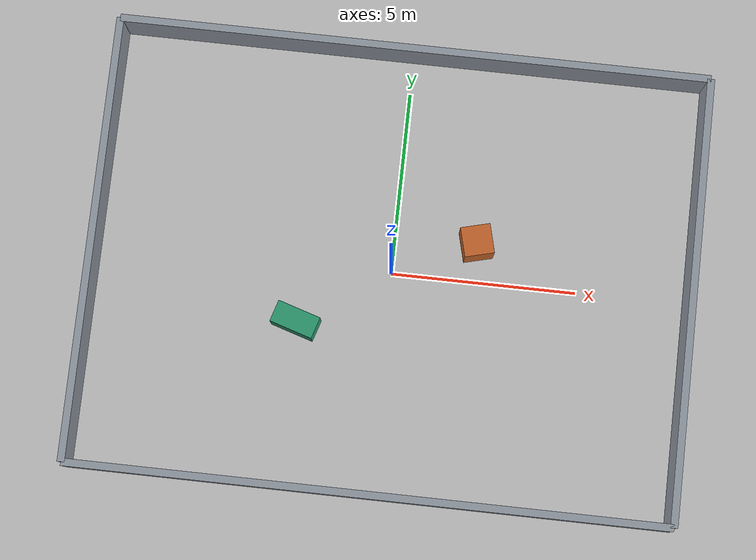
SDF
<?xml version="1.0"?>
<sdf version="1.9">
  <world name="default">
    <physics name="physics" type="ignored">
      <max_step_size>0.001</max_step_size>
      <real_time_factor>1.0</real_time_factor>
    </physics>

    <plugin filename="gz-sim-physics-system" name="gz::sim::systems::Physics"/>
    <plugin filename="gz-sim-user-commands-system" name="gz::sim::systems::UserCommands"/>
    <plugin filename="gz-sim-scene-broadcaster-system" name="gz::sim::systems::SceneBroadcaster"/>
    <plugin filename="gz-sim-imu-system" name="gz::sim::systems::Imu"/>
    <plugin filename="gz-sim-sensors-system" name="gz::sim::systems::Sensors">
      <render_engine>ogre2</render_engine>
    </plugin>

    <light name="sun" type="directional">
      <pose>0 0 8 0 0 0</pose>
      <cast_shadows>true</cast_shadows>
      <diffuse>0.8 0.8 0.8 1</diffuse>
      <specular>0.2 0.2 0.2 1</specular>
      <direction>-0.5 0.1 -0.9</direction>
    </light>

    <model name="ground">
      <static>true</static>
      <link name="ground_link">
        <collision name="ground_collision">
          <geometry>
            <plane>
              <normal>0 0 1</normal>
              <size>40 40</size>
            </plane>
          </geometry>
        </collision>
        <visual name="ground_visual">
          <geometry>
            <plane>
              <normal>0 0 1</normal>
              <size>40 40</size>
            </plane>
          </geometry>
          <material>
            <ambient>0.72 0.72 0.72 1</ambient>
            <diffuse>0.72 0.72 0.72 1</diffuse>
          </material>
        </visual>
      </link>
    </model>

    <model name="north_wall">
      <static>true</static>
      <pose>0 6 0.6 0 0 0</pose>
      <link name="wall_link">
        <collision name="wall_collision">
          <geometry><box><size>16 0.2 1.2</size></box></geometry>
        </collision>
        <visual name="wall_visual">
          <geometry><box><size>16 0.2 1.2</size></box></geometry>
          <material><ambient>0.55 0.58 0.62 1</ambient><diffuse>0.55 0.58 0.62 1</diffuse></material>
        </visual>
      </link>
    </model>
    <model name="south_wall">
      <static>true</static>
      <pose>0 -6 0.6 0 0 0</pose>
      <link name="wall_link">
        <collision name="wall_collision">
          <geometry><box><size>16 0.2 1.2</size></box></geometry>
        </collision>
        <visual name="wall_visual">
          <geometry><box><size>16 0.2 1.2</size></box></geometry>
          <material><ambient>0.55 0.58 0.62 1</ambient><diffuse>0.55 0.58 0.62 1</diffuse></material>
        </visual>
      </link>
    </model>
    <model name="east_wall">
      <static>true</static>
      <pose>8 0 0.6 0 0 0</pose>
      <link name="wall_link">
        <collision name="wall_collision">
          <geometry><box><size>0.2 12 1.2</size></box></geometry>
        </collision>
        <visual name="wall_visual">
          <geometry><box><size>0.2 12 1.2</size></box></geometry>
          <material><ambient>0.55 0.58 0.62 1</ambient><diffuse>0.55 0.58 0.62 1</diffuse></material>
        </visual>
      </link>
    </model>
    <model name="west_wall">
      <static>true</static>
      <pose>-8 0 0.6 0 0 0</pose>
      <link name="wall_link">
        <collision name="wall_collision">
          <geometry><box><size>0.2 12 1.2</size></box></geometry>
        </collision>
        <visual name="wall_visual">
          <geometry><box><size>0.2 12 1.2</size></box></geometry>
          <material><ambient>0.55 0.58 0.62 1</ambient><diffuse>0.55 0.58 0.62 1</diffuse></material>
        </visual>
      </link>
    </model>

    <model name="obstacle_1">
      <static>true</static>
      <pose>2.2 1.0 0.5 0 0 0.25</pose>
      <link name="obstacle_link">
        <collision name="obstacle_collision"><geometry><box><size>0.8 0.8 1.0</size></box></geometry></collision>
        <visual name="obstacle_visual">
          <geometry><box><size>0.8 0.8 1.0</size></box></geometry>
          <material><ambient>0.75 0.38 0.16 1</ambient><diffuse>0.75 0.38 0.16 1</diffuse></material>
        </visual>
      </link>
    </model>
    <model name="obstacle_2">
      <static>true</static>
      <pose>-2.4 -1.6 0.4 0 0 -0.3</pose>
      <link name="obstacle_link">
        <collision name="obstacle_collision"><geometry><box><size>1.2 0.6 0.8</size></box></geometry></collision>
        <visual name="obstacle_visual">
          <geometry><box><size>1.2 0.6 0.8</size></box></geometry>
          <material><ambient>0.16 0.58 0.42 1</ambient><diffuse>0.16 0.58 0.42 1</diffuse></material>
        </visual>
      </link>
    </model>
  </world>
</sdf>
